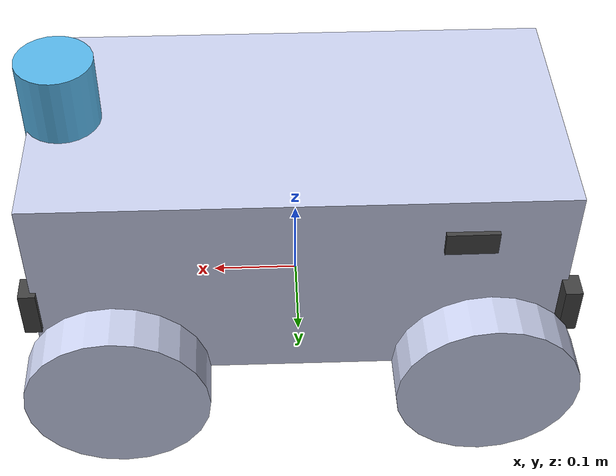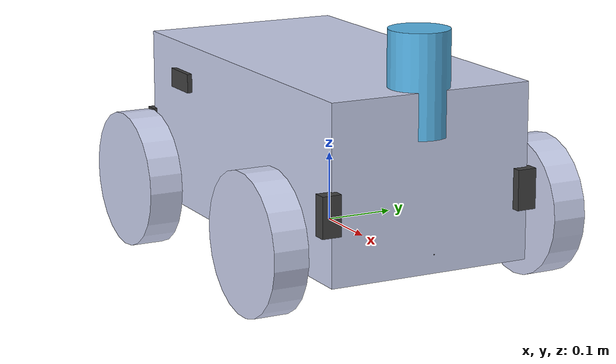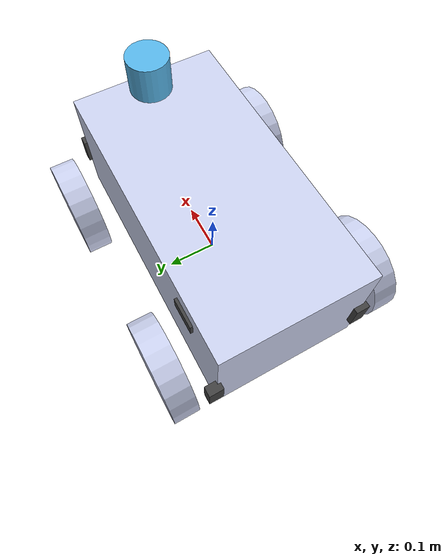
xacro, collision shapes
<?xml version="1.0"?>
<robot name="ebot" xmlns:xacro="http://www.ros.org/wiki/xacro">
  <xacro:include filename="$(find autobot_simulation)/urdf/ebot.gazebo" />
  <xacro:arg name="gpu" default="false" />
  <xacro:property name="gpu" value="$(arg gpu)" />
  <xacro:arg name="organize_cloud" default="false" />
  <xacro:property name="organize_cloud"
  value="$(arg organize_cloud)" />
  <!-- macros for calculating inertia -->
  <xacro:property name="base_mass" value="46.034" />
  <xacro:property name="wheel_mass" value="2.637" />
  <xacro:macro name="box_inertia" params="b_mass b_x b_y b_z">
    <mass value="${b_mass}" />
    <inertia ixx="${b_mass*(b_y*b_y+b_z*b_z)/12}" ixy="0" ixz="0"
    iyy="${b_mass*(b_x*b_x+b_z*b_z)/12}" iyz="0"
    izz="${b_mass*(b_x*b_x+b_y*b_y)/12}" />
  </xacro:macro>
  <xacro:macro name="cylinder_inertia" params="c_mass r l">
    <mass value="${c_mass}" />
    <inertia ixx="${c_mass*(3*r*r+l*l)/12}" ixy="0" ixz="0"
    iyy="${c_mass*(3*r*r+l*l)/12}" iyz="0"
    izz="${c_mass*(r*r)/2}" />
  </xacro:macro>
  <!--   base of the robot -->
  <link name="dummy"></link>
  <link name="ebot_base">
    <inertial>
      <origin xyz="0 0.0 0.12" rpy="0 0 0" />
      <xacro:box_inertia b_mass="${base_mass}" b_x="0.585"
      b_y="0.30" b_z="0.25" />
    </inertial>
    <visual>
      <origin xyz="0 0 0" rpy="0 0 0" />
      <geometry>
        <mesh filename="package://autobot_simulation/models/bot/chassis.STL" />
      </geometry>
      <material name="">
        <color rgba="0.79216 0.81961 0.93333 1" />
      </material>
    </visual>
    <collision>
      <origin xyz="0 0.0 0.12" rpy="0 0 0" />
      <geometry>
        <box size="0.585 0.30 0.25" />
      </geometry>
    </collision>
  </link>
  <!-- wheels -->
  <xacro:property name="wheel_inertia">
    <xacro:cylinder_inertia c_mass="${wheel_mass}" r="0.1"
    l="0.05" />
    <!--  mass radius length of a wheel -->
  </xacro:property>
  <joint name="dummy_joint" type="fixed">
    <parent link="dummy" />
    <child link="ebot_base" />
    <origin xyz="0 0 0" />
  </joint>
  <!-- front wheel right -->
  <link name="FWR">
    <inertial>
      <origin xyz="6.6592E-05 0.025016 -1.3483E-06" rpy="0 0 0" />
      <xacro:insert_block name="wheel_inertia" />
    </inertial>
    <visual>
      <origin xyz="0 0 0" rpy="0 0 0" />
      <geometry>
        <mesh filename="package://autobot_simulation/models/bot/FWR.STL" />
      </geometry>
      <material name="">
        <color rgba="0.79216 0.81961 0.93333 1" />
      </material>
    </visual>
    <collision>
      <origin xyz="0 0.025 0" rpy="1.57 1.57 0" />
      <geometry>
        <cylinder length="0.05" radius="0.1" />
      </geometry>
    </collision>
  </link>
  <joint name="FWRJ" type="continuous">
    <origin xyz="0.202539503068943 -0.189027702306049 0.0449999999999943"
    rpy="-3.14159265358979 0.911096362238563 0.00679706827343889" />
    <parent link="ebot_base" />
    <child link="FWR" />
    <axis xyz="0 -1 0" />
  </joint>
  <!-- front wheel left -->
  <link name="FWL">
    <inertial>
      <origin xyz="6.6594E-05 0.025016 -1.349E-06" rpy="0 0 0" />
      <xacro:insert_block name="wheel_inertia" />
    </inertial>
    <visual>
      <origin xyz="0 0 0" rpy="0 0 0" />
      <geometry>
        <mesh filename="package://autobot_simulation/models/bot/FWL.STL" />
      </geometry>
      <material name="">
        <color rgba="0.79216 0.81961 0.93333 1" />
      </material>
    </visual>
    <collision>
      <origin xyz="0 0.025 0" rpy="1.57 1.57 0" />
      <geometry>
        <cylinder length="0.05" radius="0.1" />
      </geometry>
    </collision>
  </link>
  <joint name="FWLJ" type="continuous">
    <origin xyz="0.199948480594093 0.192163491981716 0.0450000000000047"
    rpy="0 0 0.00679706827344463" />
    <parent link="ebot_base" />
    <child link="FWL" />
    <axis xyz="0 1 0" />
  </joint>
  <!--   rear wheel right -->
  <link name="RWR">
    <inertial>
      <origin xyz="6.6592E-05 0.025016 -1.3483E-06" rpy="0 0 0" />
      <xacro:insert_block name="wheel_inertia" />
    </inertial>
    <visual>
      <origin xyz="0 0 0" rpy="0 0 0" />
      <geometry>
        <mesh filename="package://autobot_simulation/models/bot/RWR.STL" />
      </geometry>
      <material name="">
        <color rgba="0.79216 0.81961 0.93333 1" />
      </material>
    </visual>
    <collision>
      <origin xyz="0 0.025 0" rpy="1.57 1.57 0" />
      <geometry>
        <cylinder length="0.05" radius="0.1" />
      </geometry>
    </collision>
  </link>
  <joint name="RWRJ" type="continuous">
    <origin xyz="-0.197451256939211 -0.191746508680447 0.044999999999993"
    rpy="-3.14159265358979 0.544912084409921 0.00679706827344312" />
    <parent link="ebot_base" />
    <child link="RWR" />
    <axis xyz="0 -1 0" />
  </joint>
  <!--   rear wheel left -->
  <link name="RWL">
    <inertial>
      <origin xyz="6.6594E-05 0.025016 -1.349E-06" rpy="0 0 0" />
      <xacro:insert_block name="wheel_inertia" />
    </inertial>
    <visual>
      <origin xyz="0 0 0" rpy="0 0 0" />
      <geometry>
        <mesh filename="package://autobot_simulation/models/bot/RWL.STL" />
      </geometry>
      <material name="">
        <color rgba="0.79216 0.81961 0.93333 1" />
      </material>
    </visual>
    <collision>
      <origin xyz="0 0.025 0" rpy="1.57 1.57 0" />
      <geometry>
        <cylinder length="0.05" radius="0.1" />
      </geometry>
    </collision>
  </link>
  <joint name="RWLJ" type="continuous">
    <origin xyz="-0.200042279414009 0.189444685607321 0.0449999999999969"
    rpy="0 0 0.00679706827344463" />
    <parent link="ebot_base" />
    <child link="RWL" />
    <axis xyz="0 1 0" />
  </joint>
  <!-- Sensors link -->
  <!-- intel real sense -->
  <!-- Intel real sense Camera for 3D mapping-->
  <joint name="realsensejoint" type="fixed">
    <axis xyz="0 0 0" />
    <origin xyz="0.277944460576403 0.00208437301780086 0.0230507258091751"
    rpy="0 0 0" />
    <parent link="ebot_base" />
    <child link="camera_link" />
  </joint>
  <link name="camera_link">
    <collision>
      <origin xyz="0.02 0 0" rpy="0 0 0" />
      <geometry>0
      <box size="0.001 0.001 0.001" /></geometry>
    </collision>
    <visual>
      <origin xyz="0 0 0" rpy="1.5707 0 1.5707" />
      <geometry>
        <mesh filename="package://autobot_simulation/models/bot/NAVRS.STL" />
      </geometry>
    </visual>
    <inertial>
      <mass value="1e-5" />
      <origin xyz="0 0 0" rpy="0 0 0" />
      <inertia ixx="0" ixy="0" ixz="0" iyy="0" iyz="0" izz="0" />
    </inertial>
  </link>
  <joint name="camera_optical_joint" type="fixed">
    <origin xyz="0 0 0" rpy="${-pi/2} 0 ${-pi/2}" />
    <parent link="camera_link" />
    <child link="camera_rgb_frame" />
  </joint>
  <link name="camera_rgb_frame"></link>
  <joint name="camera_depth_joint" type="fixed">
    <origin xyz="0 0 0" rpy="${-pi/2} 0 ${-pi/2}" />
    <parent link="camera_link" />
    <child link="camera_depth_frame" />
  </joint>
  <link name="camera_depth_frame"></link>
  <!-- intel real sense front-->
  <!-- GPS antenna -->
  <!--  Rear real sense -->
  <!-- LIDAR -->
  <xacro:include filename="$(find velodyne_description)/urdf/HDL-32E.urdf.xacro" />
  <xacro:HDL-32E parent="ebot_base" name="velodyne2"
  topic="/velodyne_points2" organize_cloud="${organize_cloud}"
  hz="10" samples="220" gpu="${gpu}">
    <origin xyz="0.255540836099039 0 0.18" rpy="0 0 0" />
  </xacro:HDL-32E>
  <!-- front ultrasonic sensor 1-->
  <link name="FUS1">
    <inertial>
      <origin xyz="-0.00265918092876655 2.08166817117217E-17 0.0100193625139959"
      rpy="0 0 0" />
      <mass value="0.0152532066391543" />
      <inertia ixx="4.77814992940302E-06"
      ixy="-2.01819824421892E-21" ixz="2.64657807499124E-08"
      iyy="1.003384637723E-06" iyz="-8.80528876343328E-21"
      izz="4.55679776636487E-06" />
    </inertial>
    <visual>
      <origin xyz="0 0 0" rpy="0 0 0" />
      <geometry>
        <mesh filename="package://autobot_simulation/models/bot/FUS1.STL" />
      </geometry>
      <material name="">
        <color rgba="0.250980392156863 0.250980392156863 0.250980392156863 1" />
      </material>
    </visual>
    <collision>
      <origin xyz="0 0 0" rpy="0 0 0" />
      <geometry>
        <box size="0.019 0.057 0.028" />
      </geometry>
    </collision>
  </link>
  <joint name="FUS1J" type="fixed">
    <origin xyz="0.297825909825268 -0.157279305693451 0.0977263808983278"
    rpy="-1.5707963267949 0 0.00679706827344463" />
    <parent link="ebot_base" />
    <child link="FUS1" />
    <axis xyz="0 0 0" />
  </joint>
  <!-- front ultrasonic sensor 2 -->
  <link name="FUS2">
    <inertial>
      <origin xyz="-0.0026592 1.9949E-17 0.010019" rpy="0 0 0" />
      <mass value="0.015253" />
      <inertia ixx="4.7781E-06" ixy="-2.0925E-21" ixz="2.6466E-08"
      iyy="1.0034E-06" iyz="-9.4695E-21" izz="4.5568E-06" />
    </inertial>
    <visual>
      <origin xyz="0 0 0" rpy="0 0 0" />
      <geometry>
        <mesh filename="package://autobot_simulation/models/bot/FUS2.STL" />
      </geometry>
      <material name="">
        <color rgba="0.25098 0.25098 0.25098 1" />
      </material>
    </visual>
    <collision>
      <origin xyz="0 0 0" rpy="0 0 0" />
      <geometry>
        <box size="0.019 0.057 0.028" />
      </geometry>
    </collision>
  </link>
  <joint name="FUS2J" type="fixed">
    <origin xyz="0.295786805044471 0.142713764312663 0.0977263808983286"
    rpy="-1.5707963267949 0 0.00679706827344463" />
    <parent link="ebot_base" />
    <child link="FUS2" />
    <axis xyz="0 0 0" />
  </joint>
  <!--   front ultrasonic sensor 3 -->
  <link name="FUS3">
    <inertial>
      <origin xyz="-0.0026592 5.5511E-17 0.010019" rpy="0 0 0" />
      <mass value="0.015253" />
      <inertia ixx="4.7781E-06" ixy="2.7832E-20" ixz="2.6466E-08"
      iyy="1.0034E-06" iyz="1.4502E-20" izz="4.5568E-06" />
    </inertial>
    <visual>
      <origin xyz="0 0 0" rpy="0 0 0" />
      <geometry>
        <mesh filename="package://autobot_simulation/models/bot/FUS3.STL" />
      </geometry>
      <material name="">
        <color rgba="0.25098 0.25098 0.25098 1" />
      </material>
    </visual>
    <collision>
      <origin xyz="0 0 0" rpy="0 0 0" />
      <geometry>
        <box size="0.019 0.057 0.028" />
      </geometry>
    </collision>
  </link>
  <joint name="FUS3J" type="fixed">
    <origin xyz="0.27274874909921 -0.0749478536996718 0.0424745013517897"
    rpy="0 0.785398163397449 0.00679706827344116" />
    <parent link="ebot_base" />
    <child link="FUS3" />
    <axis xyz="0 0 0" />
  </joint>
  <!--   front ultrasonic sensor 4 -->
  <link name="FUS4">
    <inertial>
      <origin xyz="-0.00265918092876644 6.93889390390723E-17 0.0100193625139959"
      rpy="0 0 0" />
      <mass value="0.0152532066391543" />
      <inertia ixx="4.77814992940302E-06" ixy="2.8163959262392E-20"
      ixz="2.64657807499109E-08" iyy="1.003384637723E-06"
      iyz="2.09456577324828E-20" izz="4.55679776636487E-06" />
    </inertial>
    <visual>
      <origin xyz="0 0 0" rpy="0 0 0" />
      <geometry>
        <mesh filename="package://autobot_simulation/models/bot/FUS4.STL" />
      </geometry>
      <material name="">
        <color rgba="0.250980392156863 0.250980392156863 0.250980392156863 1" />
      </material>
    </visual>
    <collision>
      <origin xyz="0 0 0" rpy="0 0 0" />
      <geometry>
        <box size="0.019 0.057 0.028" />
      </geometry>
    </collision>
  </link>
  <joint name="FUS4J" type="fixed">
    <origin xyz="0.271702008645067 0.0790485889034664 0.0424745013517894"
    rpy="0 0.785398163397449 0.00679706827344116" />
    <parent link="ebot_base" />
    <child link="FUS4" />
    <axis xyz="0 0 0" />
  </joint>
  <!--   Rear ultra sonic sensor 5 -->
  <link name="RUS5">
    <inertial>
      <origin xyz="-0.0026592 2.6021E-17 0.010019" rpy="0 0 0" />
      <mass value="0.015253" />
      <inertia ixx="4.7781E-06" ixy="-1.9723E-21" ixz="2.6466E-08"
      iyy="1.0034E-06" iyz="-7.7105E-21" izz="4.5568E-06" />
    </inertial>
    <visual>
      <origin xyz="0 0 0" rpy="0 0 0" />
      <geometry>
        <mesh filename="package://autobot_simulation/models/bot/RUS5.STL" />
      </geometry>
      <material name="">
        <color rgba="0.25098 0.25098 0.25098 1" />
      </material>
    </visual>
    <collision>
      <origin xyz="0 0 0" rpy="0 0 0" />
      <geometry>
        <box size="0.019 0.057 0.028" />
      </geometry>
    </collision>
  </link>
  <joint name="RUS5J" type="fixed">
    <origin xyz="-0.29532868617037 0.157696288994793 0.0977029437251515"
    rpy="-1.5707963267949 0 -3.13479558531634" />
    <parent link="ebot_base" />
    <child link="RUS5" />
    <axis xyz="0 0 0" />
  </joint>
  <!--   Rear ultra sonic sensor 6 -->
  <link name="RUS6">
    <inertial>
      <origin xyz="-0.00265918092876644 2.34187669256869E-17 0.0100193625139959"
      rpy="0 0 0" />
      <mass value="0.0152532066391543" />
      <inertia ixx="4.77814992940302E-06"
      ixy="-1.34867897211379E-21" ixz="2.64657807499114E-08"
      iyy="1.003384637723E-06" iyz="-1.29818552470248E-20"
      izz="4.55679776636487E-06" />
    </inertial>
    <visual>
      <origin xyz="0 0 0" rpy="0 0 0" />
      <geometry>
        <mesh filename="package://autobot_simulation/models/bot/RUS6.STL" />
      </geometry>
      <material name="">
        <color rgba="0.250980392156863 0.250980392156863 0.250980392156863 1" />
      </material>
    </visual>
    <collision>
      <origin xyz="0 0 0" rpy="0 0 0" />
      <geometry>
        <box size="0.019 0.057 0.028" />
      </geometry>
    </collision>
  </link>
  <joint name="RUS6J" type="fixed">
    <origin xyz="-0.293289581389573 -0.14229678101132 0.0977029437251508"
    rpy="-1.5707963267949 0 -3.13479558531634" />
    <parent link="ebot_base" />
    <child link="RUS6" />
    <axis xyz="0 0 0" />
  </joint>
  <!--   Right ultra sonic sensor 7 -->
  <link name="RHUS7">
    <inertial>
      <origin xyz="-0.00265918092876641 1.23570598198341E-12 0.0100193625139959"
      rpy="0 0 0" />
      <mass value="0.0152532066391543" />
      <inertia ixx="4.77814992940302E-06"
      ixy="3.27217392921119E-18" ixz="2.64657807499107E-08"
      iyy="1.003384637723E-06" iyz="4.38229124201629E-16"
      izz="4.55679776636487E-06" />
    </inertial>
    <visual>
      <origin xyz="0 0 0" rpy="0 0 0" />
      <geometry>
        <mesh filename="package://autobot_simulation/models/bot/RHUS7.STL" />
      </geometry>
      <material name="">
        <color rgba="0.250980392156863 0.250980392156863 0.250980392156863 1" />
      </material>
    </visual>
    <collision>
      <origin xyz="0 0 0" rpy="0 0 0" />
      <geometry>
        <box size="0.019 0.057 0.028" />
      </geometry>
    </collision>
  </link>
  <joint name="RHUS7J" type="fixed">
    <origin xyz="-0.17860231149778 -0.148017381955971 0.189449821416576"
    rpy="0 0 -1.56399925852145" />
    <parent link="ebot_base" />
    <child link="RHUS7" />
    <axis xyz="0 0 0" />
  </joint>
  <!--   Right ultra sonicsensor 9 -->
  <link name="RHUS9">
    <inertial>
      <origin xyz="-0.0026592 6.9389E-18 0.010019" rpy="0 0 0" />
      <mass value="0.015253" />
      <inertia ixx="4.7781E-06" ixy="1.6008E-20" ixz="2.6466E-08"
      iyy="1.0034E-06" iyz="-1.185E-20" izz="4.5568E-06" />
    </inertial>
    <visual>
      <origin xyz="0 0 0" rpy="0 0 0" />
      <geometry>
        <mesh filename="package://autobot_simulation/models/bot/RHUS9.STL" />
      </geometry>
      <material name="">
        <color rgba="0.25098 0.25098 0.25098 1" />
      </material>
    </visual>
    <collision>
      <origin xyz="0 0 0" rpy="0 0 0" />
      <geometry>
        <box size="0.019 0.057 0.028" />
      </geometry>
    </collision>
  </link>
  <joint name="RHUS9J" type="fixed">
    <origin xyz="0.141804076845343 -0.0977216096162414 0.196076309026378"
    rpy="-0.00186883076605492 0.123098458475999 -0.786255211903501" />
    <parent link="ebot_base" />
    <child link="RHUS9" />
    <axis xyz="0 0 0" />
  </joint>
  <!--   Left ultra sonic sensor 9 -->
  <link name="LHUS9">
    <inertial>
      <origin xyz="-0.00265918092876642 -1.2353174039248E-12 0.0100193625139958"
      rpy="0 0 0" />
      <mass value="0.0152532066391543" />
      <inertia ixx="4.77814992940302E-06"
      ixy="-3.2538981368926E-18" ixz="2.64657807499116E-08"
      iyy="1.003384637723E-06" iyz="-4.38135627183199E-16"
      izz="4.55679776636487E-06" />
    </inertial>
    <visual>
      <origin xyz="0 0 0" rpy="0 0 0" />
      <geometry>
        <mesh filename="package://autobot_simulation/models/bot/LHUS9.STL" />
      </geometry>
      <material name="">
        <color rgba="0.250980392156863 0.250980392156863 0.250980392156863 1" />
      </material>
    </visual>
    <collision>
      <origin xyz="0 0 0" rpy="0 0 0" />
      <geometry>
        <box size="0.019 0.057 0.028" />
      </geometry>
    </collision>
  </link>
  <joint name="LHUS9J" type="fixed">
    <origin xyz="-0.180600634182961 0.14597582665002 0.189449821416576"
    rpy="0 0 1.57759339506834" />
    <parent link="ebot_base" />
    <child link="LHUS9" />
    <axis xyz="0 0 0" />
  </joint>
  <!--   left ultra sonic sensor 10 -->
  <link name="LHUS10">
    <inertial>
      <origin xyz="-0.0026592 -2.0817E-17 0.010019" rpy="0 0 0" />
      <mass value="0.015253" />
      <inertia ixx="4.7781E-06" ixy="1.1539E-20" ixz="2.6466E-08"
      iyy="1.0034E-06" iyz="-1.2651E-20" izz="4.5568E-06" />
    </inertial>
    <visual>
      <origin xyz="0 0 0" rpy="0 0 0" />
      <geometry>
        <mesh filename="package://autobot_simulation/models/bot/LHUS10.STL" />
      </geometry>
      <material name="">
        <color rgba="0.25098 0.25098 0.25098 1" />
      </material>
    </visual>
    <collision>
      <origin xyz="0 0 0" rpy="0 0 0" />
      <geometry>
        <box size="0.019 0.057 0.028" />
      </geometry>
    </collision>
  </link>
  <joint name="LHUS10J" type="fixed">
    <origin xyz="0.14045985551618 0.10004021562239 0.196076309026377"
    rpy="0.00186883076604301 0.123098458475999 0.799849348450393" />
    <parent link="ebot_base" />
    <child link="LHUS10" />
    <axis xyz="0 0 0" />
  </joint>
  <!-- IMU -->
  <link name="imu_link">
    <collision>
      <origin xyz="0 0 0" rpy="0 0 0" />
      <geometry>
        <box size="0.02 0.015 0.008" />
      </geometry>
    </collision>
    <visual>
      <origin xyz="0 0 0" rpy="0 0 0" />
      <geometry>
        <box size="0.02 0.015 0.008" />
      </geometry>
    </visual>
    <inertial>
      <mass value="1e-5" />
      <origin xyz="0 0 0" rpy="0 0 0" />
      <inertia ixx="0" ixy="0" ixz="0" iyy="0" iyz="0" izz="0" />
    </inertial>
  </link>
  <joint name="imujoint" type="fixed">
    <origin xyz="0 0 0.2" rpy="0 0 0" />
    <parent link="ebot_base" />
    <child link="imu_link" />
    <axis xyz="0 0 0" />
  </joint>
</robot>

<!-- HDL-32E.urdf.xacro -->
<robot xmlns:xacro="http://www.ros.org/wiki/xacro" name="HDL-32E">
  <xacro:property name="M_PI" value="3.1415926535897931" />
  <xacro:macro name="HDL-32E" params="*origin parent:=base_link name:=velodyne tf_prefix:='' topic:=/velodyne_points organize_cloud:=false hz:=10 lasers:=32 samples:=2187 collision_range:=0.3 min_range:=0.9 max_range:=130.0 noise:=0.008 min_angle:=-${M_PI} max_angle:=${M_PI} gpu:=false">

    <joint name="${name}_base_mount_joint" type="fixed">
      <xacro:insert_block name="origin" />
      <parent link="${parent}"/>
      <child link="${name}_base_link"/>
    </joint>

    <link name="${name}_base_link">
      <inertial>
        <mass value="1.0"/>
        <origin xyz="0 0 0.07212"/>
        <inertia ixx="${(1.0 * (3.0*0.04267*0.04267 + 0.14424*0.14424)) / 12.0}" ixy="0" ixz="0"
          iyy="${(1.0 * (3.0*0.04267*0.04267 + 0.14424*0.14424)) / 12.0}" iyz="0"
          izz="${0.5 * 1.0 * (0.04267*0.04267)}"/>
      </inertial>
      <visual>
        <geometry>
          <mesh filename="package://velodyne_description/meshes/HDL32E_base.dae" />
        </geometry>
      </visual>
      <collision>
        <origin rpy="0 0 0" xyz="0 0 0.07212"/>
        <geometry>
          <cylinder radius="0.04267" length="0.14424"/>
        </geometry>
      </collision>
    </link>

    <joint name="${name}_base_scan_joint" type="fixed" >
      <origin xyz="0 0 0.09081" rpy="0 0 0" />
      <parent link="${name}_base_link" />
      <child link="${name}"/>
    </joint>

    <link name="${name}">
      <inertial>
        <mass value="0.01"/>
        <origin xyz="0 0 0"/>
        <inertia ixx="1e-7" ixy="0" ixz="0" iyy="1e-7" iyz="0" izz="1e-7"/>
      </inertial>
      <visual>
        <origin xyz="0 0 -0.09081" rpy="0 0 0" />
        <geometry>
          <mesh filename="package://velodyne_description/meshes/HDL32E_scan.dae" />
        </geometry>
      </visual>
      <collision>
        <geometry>
          <sphere radius="0"/>
        </geometry>
      </collision>
    </link>

    <!-- Gazebo requires the velodyne_gazebo_plugins package -->
    <gazebo reference="${name}">
      <xacro:if value="${gpu}">
        <sensor type="gpu_ray" name="${name}-HDL32E">
          <pose>0 0 0 0 0 0</pose>
          <visualize>false</visualize>
          <update_rate>${hz}</update_rate>
          <ray>
            <scan>
              <horizontal>
                <samples>${samples}</samples>
                <resolution>1</resolution>
                <min_angle>${min_angle}</min_angle>
                <max_angle>${max_angle}</max_angle>
              </horizontal>
              <vertical>
                <samples>${lasers}</samples>
                <resolution>1</resolution>
                <min_angle>-${5.0*M_PI/180.0}</min_angle>
                <max_angle> ${85.0*M_PI/180.0}</max_angle>
              </vertical>
            </scan>
            <range>
              <min>${collision_range}</min>
              <max>${max_range+1}</max>
              <resolution>0.001</resolution>
            </range>
            <noise>
              <type>gaussian</type>
              <mean>0.0</mean>
              <stddev>0.0</stddev>
            </noise>
          </ray>
          <plugin name="gazebo_ros_laser_controller" filename="libgazebo_ros_velodyne_laser.so">
            <ros>
              <namespace>/${name}</namespace>
              <remapping>~/out:=${topic}</remapping>
            </ros>
            <tf_prefix>${tf_prefix}</tf_prefix>
            <frame_name>${name}</frame_name>
            <organize_cloud>${organize_cloud}</organize_cloud>
            <min_range>${min_range}</min_range>
            <max_range>${max_range}</max_range>
            <gaussian_noise>${noise}</gaussian_noise>
          </plugin>
        </sensor>
      </xacro:if>
      <xacro:unless value="${gpu}">
        <sensor type="ray" name="${name}-HDL32E">
          <pose>0 0 0 0 0 0</pose>
          <visualize>false</visualize>
          <update_rate>${hz}</update_rate>
          <ray>
            <scan>
              <horizontal>
                <samples>${samples}</samples>
                <resolution>1</resolution>
                <min_angle>${min_angle}</min_angle>
                <max_angle>${max_angle}</max_angle>
              </horizontal>
              <vertical>
                <samples>${lasers}</samples>
                <resolution>1</resolution>
                <min_angle>-${5.0*M_PI/180.0}</min_angle>
                <max_angle> ${85.0*M_PI/180.0}</max_angle>
              </vertical>
            </scan>
            <range>
              <min>${collision_range}</min>
              <max>${max_range+1}</max>
              <resolution>0.001</resolution>
            </range>
            <noise>
              <type>gaussian</type>
              <mean>0.0</mean>
              <stddev>0.0</stddev>
            </noise>
          </ray>
          <plugin name="gazebo_ros_laser_controller" filename="libgazebo_ros_velodyne_laser.so">
            <ros>
              <namespace>/${name}</namespace>
              <remapping>~/out:=${topic}</remapping>
            </ros>
            <tf_prefix>${tf_prefix}</tf_prefix>
            <frame_name>${name}</frame_name>
            <organize_cloud>${organize_cloud}</organize_cloud>
            <min_range>${min_range}</min_range>
            <max_range>${max_range}</max_range>
            <gaussian_noise>${noise}</gaussian_noise>
          </plugin>
        </sensor>
      </xacro:unless>
    </gazebo>

  </xacro:macro>
</robot>
